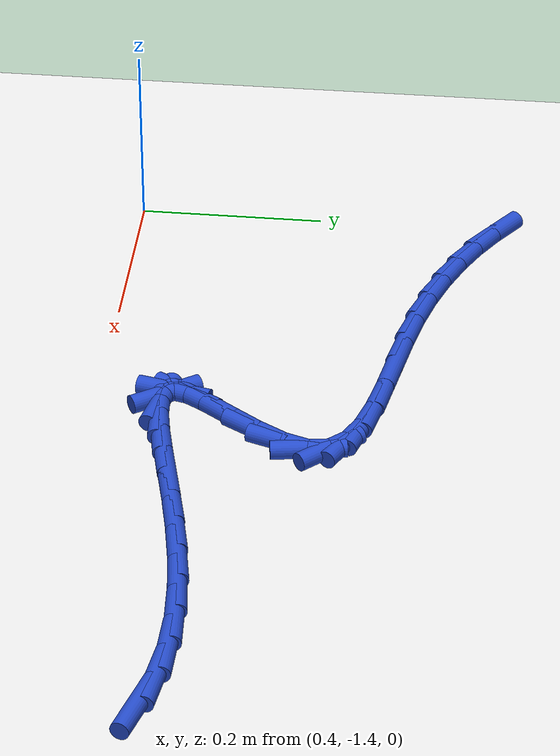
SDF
<sdf version="1.6">
 <world name="default">
  <model name="ground_plane">
   <static>1</static>
   <link name="link">
    <collision name="collision">
     <geometry><plane><normal>0 0 1</normal><size>100 100</size></plane></geometry>
     <surface><friction><ode><mu>100</mu><mu2>50</mu2></ode></friction></surface>
    </collision>
    <visual name="visual">
     <cast_shadows>0</cast_shadows>
     <geometry><plane><normal>0 0 1</normal><size>100 100</size></plane></geometry>
     <material>
      <script><uri>file://media/materials/scripts/gazebo.material</uri><name>Gazebo/WhiteGlow</name></script>
     </material>
    </visual>
   </link>
  </model>
  <model name="line">
   <link name="link_203">
    <pose>1.2515773058927018 -1.287440209743094 0.01 0 1.57 -0.2724559465364805</pose>
    <collision name="collision">
     <geometry><cylinder><radius>0.01</radius><length>0.08</length></cylinder></geometry>
    </collision>
    <visual name="visual">
     <material>
      <script><name>Gazebo/Blue</name><uri>file://media/materials/scripts/gazebo.material</uri></script>
     </material>
     <geometry><cylinder><radius>0.01</radius><length>0.08</length></cylinder></geometry>
    </visual>
   </link>
   <link name="link_204">
    <pose>1.209832938261293 -1.275776666469461 0.01 0 1.57 -0.12841132170508643</pose>
    <collision name="collision">
     <geometry><cylinder><radius>0.01</radius><length>0.08</length></cylinder></geometry>
    </collision>
    <visual name="visual">
     <material>
      <script><name>Gazebo/Blue</name><uri>file://media/materials/scripts/gazebo.material</uri></script>
     </material>
     <geometry><cylinder><radius>0.01</radius><length>0.08</length></cylinder></geometry>
    </visual>
   </link>
   <link name="link_205">
    <pose>1.1653099323400475 -1.270027774921591 0.01 0 1.57 -0.016650525585769082</pose>
    <collision name="collision">
     <geometry><cylinder><radius>0.01</radius><length>0.08</length></cylinder></geometry>
    </collision>
    <visual name="visual">
     <material>
      <script><name>Gazebo/Blue</name><uri>file://media/materials/scripts/gazebo.material</uri></script>
     </material>
     <geometry><cylinder><radius>0.01</radius><length>0.08</length></cylinder></geometry>
    </visual>
   </link>
   <link name="link_206">
    <pose>1.1189329935384726 -1.269255503145957 0.01 0 1.57 0.06876258098499904</pose>
    <collision name="collision">
     <geometry><cylinder><radius>0.01</radius><length>0.08</length></cylinder></geometry>
    </collision>
    <visual name="visual">
     <material>
      <script><name>Gazebo/Blue</name><uri>file://media/materials/scripts/gazebo.material</uri></script>
     </material>
     <geometry><cylinder><radius>0.01</radius><length>0.08</length></cylinder></geometry>
    </visual>
   </link>
   <link name="link_207">
    <pose>1.0716265024229101 -1.2725135562011138 0.01 0 1.57 0.13325467059903595</pose>
    <collision name="collision">
     <geometry><cylinder><radius>0.01</radius><length>0.08</length></cylinder></geometry>
    </collision>
    <visual name="visual">
     <material>
      <script><name>Gazebo/Blue</name><uri>file://media/materials/scripts/gazebo.material</uri></script>
     </material>
     <geometry><cylinder><radius>0.01</radius><length>0.08</length></cylinder></geometry>
    </visual>
   </link>
   <link name="link_208">
    <pose>1.024314839559708 -1.27885563914562 0.01 0 1.57 0.18078866087393197</pose>
    <collision name="collision">
     <geometry><cylinder><radius>0.01</radius><length>0.08</length></cylinder></geometry>
    </collision>
    <visual name="visual">
     <material>
      <script><name>Gazebo/Blue</name><uri>file://media/materials/scripts/gazebo.material</uri></script>
     </material>
     <geometry><cylinder><radius>0.01</radius><length>0.08</length></cylinder></geometry>
    </visual>
   </link>
   <link name="link_209">
    <pose>0.9779223855152085 -1.287335457038032 0.01 0 1.57 0.21377606356661247</pose>
    <collision name="collision">
     <geometry><cylinder><radius>0.01</radius><length>0.08</length></cylinder></geometry>
    </collision>
    <visual name="visual">
     <material>
      <script><name>Gazebo/Blue</name><uri>file://media/materials/scripts/gazebo.material</uri></script>
     </material>
     <geometry><cylinder><radius>0.01</radius><length>0.08</length></cylinder></geometry>
    </visual>
   </link>
   <link name="link_210">
    <pose>0.9333735208557593 -1.2970067149369064 0.01 0 1.57 0.23303117994682415</pose>
    <collision name="collision">
     <geometry><cylinder><radius>0.01</radius><length>0.08</length></cylinder></geometry>
    </collision>
    <visual name="visual">
     <material>
      <script><name>Gazebo/Blue</name><uri>file://media/materials/scripts/gazebo.material</uri></script>
     </material>
     <geometry><cylinder><radius>0.01</radius><length>0.08</length></cylinder></geometry>
    </visual>
   </link>
   <link name="link_211">
    <pose>0.8915926261477034 -1.3069231179008005 0.01 0 1.57 0.2373812591900379</pose>
    <collision name="collision">
     <geometry><cylinder><radius>0.01</radius><length>0.08</length></cylinder></geometry>
    </collision>
    <visual name="visual">
     <material>
      <script><name>Gazebo/Blue</name><uri>file://media/materials/scripts/gazebo.material</uri></script>
     </material>
     <geometry><cylinder><radius>0.01</radius><length>0.08</length></cylinder></geometry>
    </visual>
   </link>
   <link name="link_212">
    <pose>0.853504081957388 -1.3161383709882717 0.01 0 1.57 0.22235639701768972</pose>
    <collision name="collision">
     <geometry><cylinder><radius>0.01</radius><length>0.08</length></cylinder></geometry>
    </collision>
    <visual name="visual">
     <material>
      <script><name>Gazebo/Blue</name><uri>file://media/materials/scripts/gazebo.material</uri></script>
     </material>
     <geometry><cylinder><radius>0.01</radius><length>0.08</length></cylinder></geometry>
    </visual>
   </link>
   <link name="link_213">
    <pose>0.8200322688511561 -1.323706179257876 0.01 0 1.57 0.1762384447944593</pose>
    <collision name="collision">
     <geometry><cylinder><radius>0.01</radius><length>0.08</length></cylinder></geometry>
    </collision>
    <visual name="visual">
     <material>
      <script><name>Gazebo/Blue</name><uri>file://media/materials/scripts/gazebo.material</uri></script>
     </material>
     <geometry><cylinder><radius>0.01</radius><length>0.08</length></cylinder></geometry>
    </visual>
   </link>
   <link name="link_214">
    <pose>0.7921015673953549 -1.3286802477681707 0.01 0 1.57 0.06670822623384763</pose>
    <collision name="collision">
     <geometry><cylinder><radius>0.01</radius><length>0.08</length></cylinder></geometry>
    </collision>
    <visual name="visual">
     <material>
      <script><name>Gazebo/Blue</name><uri>file://media/materials/scripts/gazebo.material</uri></script>
     </material>
     <geometry><cylinder><radius>0.01</radius><length>0.08</length></cylinder></geometry>
    </visual>
   </link>
   <link name="link_215">
    <pose>0.7706363581563284 -1.3301142815777136 0.01 0 1.57 -0.21354776002642997</pose>
    <collision name="collision">
     <geometry><cylinder><radius>0.01</radius><length>0.08</length></cylinder></geometry>
    </collision>
    <visual name="visual">
     <material>
      <script><name>Gazebo/Blue</name><uri>file://media/materials/scripts/gazebo.material</uri></script>
     </material>
     <geometry><cylinder><radius>0.01</radius><length>0.08</length></cylinder></geometry>
    </visual>
   </link>
   <link name="link_216">
    <pose>0.756561021700421 -1.3270619857450607 0.01 0 1.57 -0.9743181412127325</pose>
    <collision name="collision">
     <geometry><cylinder><radius>0.01</radius><length>0.08</length></cylinder></geometry>
    </collision>
    <visual name="visual">
     <material>
      <script><name>Gazebo/Blue</name><uri>file://media/materials/scripts/gazebo.material</uri></script>
     </material>
     <geometry><cylinder><radius>0.01</radius><length>0.08</length></cylinder></geometry>
    </visual>
   </link>
   <link name="link_217">
    <pose>0.7507999385939792 -1.3185770653287694 0.01 0 1.57 1.3409697313826148</pose>
    <collision name="collision">
     <geometry><cylinder><radius>0.01</radius><length>0.08</length></cylinder></geometry>
    </collision>
    <visual name="visual">
     <material>
      <script><name>Gazebo/Blue</name><uri>file://media/materials/scripts/gazebo.material</uri></script>
     </material>
     <geometry><cylinder><radius>0.01</radius><length>0.08</length></cylinder></geometry>
    </visual>
   </link>
   <link name="link_218">
    <pose>0.7542774894033475 -1.303713225387396 0.01 0 1.57 1.0275980493014214</pose>
    <collision name="collision">
     <geometry><cylinder><radius>0.01</radius><length>0.08</length></cylinder></geometry>
    </collision>
    <visual name="visual">
     <material>
      <script><name>Gazebo/Blue</name><uri>file://media/materials/scripts/gazebo.material</uri></script>
     </material>
     <geometry><cylinder><radius>0.01</radius><length>0.08</length></cylinder></geometry>
    </visual>
   </link>
   <link name="link_219">
    <pose>0.7675263364673613 -1.281770253946887 0.01 0 1.57 0.9429929564147421</pose>
    <collision name="collision">
     <geometry><cylinder><radius>0.01</radius><length>0.08</length></cylinder></geometry>
    </collision>
    <visual name="visual">
     <material>
      <script><name>Gazebo/Blue</name><uri>file://media/materials/scripts/gazebo.material</uri></script>
     </material>
     <geometry><cylinder><radius>0.01</radius><length>0.08</length></cylinder></geometry>
    </visual>
   </link>
   <link name="link_220">
    <pose>0.7874368430298366 -1.2543360831798465 0.01 0 1.57 0.9508172020639698</pose>
    <collision name="collision">
     <geometry><cylinder><radius>0.01</radius><length>0.08</length></cylinder></geometry>
    </collision>
    <visual name="visual">
     <material>
      <script><name>Gazebo/Blue</name><uri>file://media/materials/scripts/gazebo.material</uri></script>
     </material>
     <geometry><cylinder><radius>0.01</radius><length>0.08</length></cylinder></geometry>
    </visual>
   </link>
   <link name="link_221">
    <pose>0.8089204523255933 -1.2242418309822851 0.01 0 1.57 1.0303290165633434</pose>
    <collision name="collision">
     <geometry><cylinder><radius>0.01</radius><length>0.08</length></cylinder></geometry>
    </collision>
    <visual name="visual">
     <material>
      <script><name>Gazebo/Blue</name><uri>file://media/materials/scripts/gazebo.material</uri></script>
     </material>
     <geometry><cylinder><radius>0.01</radius><length>0.08</length></cylinder></geometry>
    </visual>
   </link>
   <link name="link_222">
    <pose>0.8268688972977877 -1.1943309975360499 0.01 0 1.57 1.2375838084558797</pose>
    <collision name="collision">
     <geometry><cylinder><radius>0.01</radius><length>0.08</length></cylinder></geometry>
    </collision>
    <visual name="visual">
     <material>
      <script><name>Gazebo/Blue</name><uri>file://media/materials/scripts/gazebo.material</uri></script>
     </material>
     <geometry><cylinder><radius>0.01</radius><length>0.08</length></cylinder></geometry>
    </visual>
   </link>
   <link name="link_223">
    <pose>0.8361739108895733 -1.1674470830229902 0.01 0 1.57 -1.415670963886674</pose>
    <collision name="collision">
     <geometry><cylinder><radius>0.01</radius><length>0.08</length></cylinder></geometry>
    </collision>
    <visual name="visual">
     <material>
      <script><name>Gazebo/Blue</name><uri>file://media/materials/scripts/gazebo.material</uri></script>
     </material>
     <geometry><cylinder><radius>0.01</radius><length>0.08</length></cylinder></geometry>
    </visual>
   </link>
   <link name="link_224">
    <pose>0.8327979465503894 -1.1458591161316913 0.01 0 1.57 -0.826800116359214</pose>
    <collision name="collision">
     <geometry><cylinder><radius>0.01</radius><length>0.08</length></cylinder></geometry>
    </collision>
    <visual name="visual">
     <material>
      <script><name>Gazebo/Blue</name><uri>file://media/materials/scripts/gazebo.material</uri></script>
     </material>
     <geometry><cylinder><radius>0.01</radius><length>0.08</length></cylinder></geometry>
    </visual>
   </link>
   <link name="link_225">
    <pose>0.8175146060542847 -1.1292548099355817 0.01 0 1.57 -0.46761196080153294</pose>
    <collision name="collision">
     <geometry><cylinder><radius>0.01</radius><length>0.08</length></cylinder></geometry>
    </collision>
    <visual name="visual">
     <material>
      <script><name>Gazebo/Blue</name><uri>file://media/materials/scripts/gazebo.material</uri></script>
     </material>
     <geometry><cylinder><radius>0.01</radius><length>0.08</length></cylinder></geometry>
    </visual>
   </link>
   <link name="link_226">
    <pose>0.7924482383750707 -1.1165971638631074 0.01 0 1.57 -0.28950813390810803</pose>
    <collision name="collision">
     <geometry><cylinder><radius>0.01</radius><length>0.08</length></cylinder></geometry>
    </collision>
    <visual name="visual">
     <material>
      <script><name>Gazebo/Blue</name><uri>file://media/materials/scripts/gazebo.material</uri></script>
     </material>
     <geometry><cylinder><radius>0.01</radius><length>0.08</length></cylinder></geometry>
    </visual>
   </link>
   <link name="link_227">
    <pose>0.7597232625513157 -1.1068491397510116 0.01 0 1.57 -0.20300894440197703</pose>
    <collision name="collision">
     <geometry><cylinder><radius>0.01</radius><length>0.08</length></cylinder></geometry>
    </collision>
    <visual name="visual">
     <material>
      <script><name>Gazebo/Blue</name><uri>file://media/materials/scripts/gazebo.material</uri></script>
     </material>
     <geometry><cylinder><radius>0.01</radius><length>0.08</length></cylinder></geometry>
    </visual>
   </link>
   <link name="link_228">
    <pose>0.7214640976215916 -1.0989736994360395 0.01 0 1.57 -0.16736779578026983</pose>
    <collision name="collision">
     <geometry><cylinder><radius>0.01</radius><length>0.08</length></cylinder></geometry>
    </collision>
    <visual name="visual">
     <material>
      <script><name>Gazebo/Blue</name><uri>file://media/materials/scripts/gazebo.material</uri></script>
     </material>
     <geometry><cylinder><radius>0.01</radius><length>0.08</length></cylinder></geometry>
    </visual>
   </link>
   <link name="link_229">
    <pose>0.6797951626244657 -1.0919338047549325 0.01 0 1.57 -0.16701319817304316</pose>
    <collision name="collision">
     <geometry><cylinder><radius>0.01</radius><length>0.08</length></cylinder></geometry>
    </collision>
    <visual name="visual">
     <material>
      <script><name>Gazebo/Blue</name><uri>file://media/materials/scripts/gazebo.material</uri></script>
     </material>
     <geometry><cylinder><radius>0.01</radius><length>0.08</length></cylinder></geometry>
    </visual>
   </link>
   <link name="link_230">
    <pose>0.6368408765985105 -1.0846924175444366 0.01 0 1.57 -0.19869027224564412</pose>
    <collision name="collision">
     <geometry><cylinder><radius>0.01</radius><length>0.08</length></cylinder></geometry>
    </collision>
    <visual name="visual">
     <material>
      <script><name>Gazebo/Blue</name><uri>file://media/materials/scripts/gazebo.material</uri></script>
     </material>
     <geometry><cylinder><radius>0.01</radius><length>0.08</length></cylinder></geometry>
    </visual>
   </link>
   <link name="link_231">
    <pose>0.5947254450489619 -1.0762126080486585 0.01 0 1.57 -0.2593285989993304</pose>
    <collision name="collision">
     <geometry><cylinder><radius>0.01</radius><length>0.08</length></cylinder></geometry>
    </collision>
    <visual name="visual">
     <material>
      <script><name>Gazebo/Blue</name><uri>file://media/materials/scripts/gazebo.material</uri></script>
     </material>
     <geometry><cylinder><radius>0.01</radius><length>0.08</length></cylinder></geometry>
    </visual>
   </link>
   <link name="link_232">
    <pose>0.5550970890380904 -1.0656990959969364 0.01 0 1.57 -0.3280781960171189</pose>
    <collision name="collision">
     <geometry><cylinder><radius>0.01</radius><length>0.08</length></cylinder></geometry>
    </collision>
    <visual name="visual">
     <material>
      <script><name>Gazebo/Blue</name><uri>file://media/materials/scripts/gazebo.material</uri></script>
     </material>
     <geometry><cylinder><radius>0.01</radius><length>0.08</length></cylinder></geometry>
    </visual>
   </link>
   <link name="link_233">
    <pose>0.5181166361255529 -1.0531117263743646 0.01 0 1.57 -0.39961141331842515</pose>
    <collision name="collision">
     <geometry><cylinder><radius>0.01</radius><length>0.08</length></cylinder></geometry>
    </collision>
    <visual name="visual">
     <material>
      <script><name>Gazebo/Blue</name><uri>file://media/materials/scripts/gazebo.material</uri></script>
     </material>
     <geometry><cylinder><radius>0.01</radius><length>0.08</length></cylinder></geometry>
    </visual>
   </link>
   <link name="link_234">
    <pose>0.4836551783482267 -1.0385574381330085 0.01 0 1.57 -0.4730464549050993</pose>
    <collision name="collision">
     <geometry><cylinder><radius>0.01</radius><length>0.08</length></cylinder></geometry>
    </collision>
    <visual name="visual">
     <material>
      <script><name>Gazebo/Blue</name><uri>file://media/materials/scripts/gazebo.material</uri></script>
     </material>
     <geometry><cylinder><radius>0.01</radius><length>0.08</length></cylinder></geometry>
    </visual>
   </link>
   <link name="link_235">
    <pose>0.4515838077429868 -1.022143170224933 0.01 0 1.57 -0.5473265337000289</pose>
    <collision name="collision">
     <geometry><cylinder><radius>0.01</radius><length>0.08</length></cylinder></geometry>
    </collision>
    <visual name="visual">
     <material>
      <script><name>Gazebo/Blue</name><uri>file://media/materials/scripts/gazebo.material</uri></script>
     </material>
     <geometry><cylinder><radius>0.01</radius><length>0.08</length></cylinder></geometry>
    </visual>
   </link>
   <link name="link_236">
    <pose>0.4217736163467075 -1.0039758616022032 0.01 0 1.57 -0.6212886214118208</pose>
    <collision name="collision">
     <geometry><cylinder><radius>0.01</radius><length>0.08</length></cylinder></geometry>
    </collision>
    <visual name="visual">
     <material>
      <script><name>Gazebo/Blue</name><uri>file://media/materials/scripts/gazebo.material</uri></script>
     </material>
     <geometry><cylinder><radius>0.01</radius><length>0.08</length></cylinder></geometry>
    </visual>
   </link>
  </model>
 </world>
</sdf>
